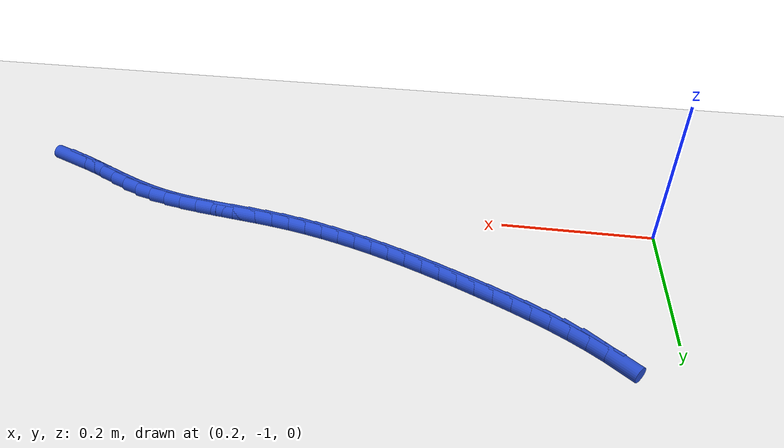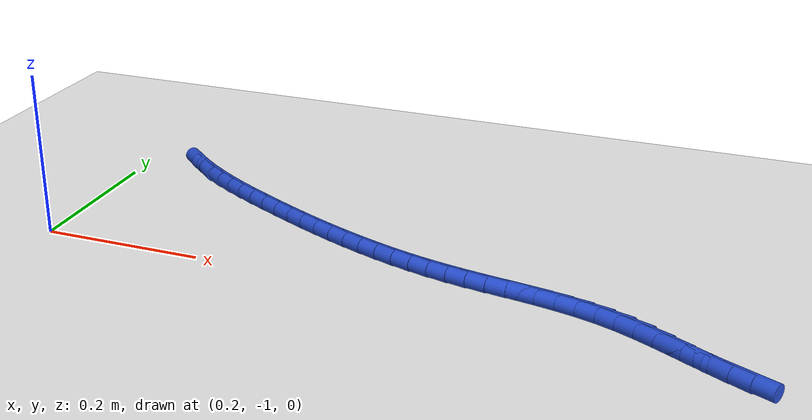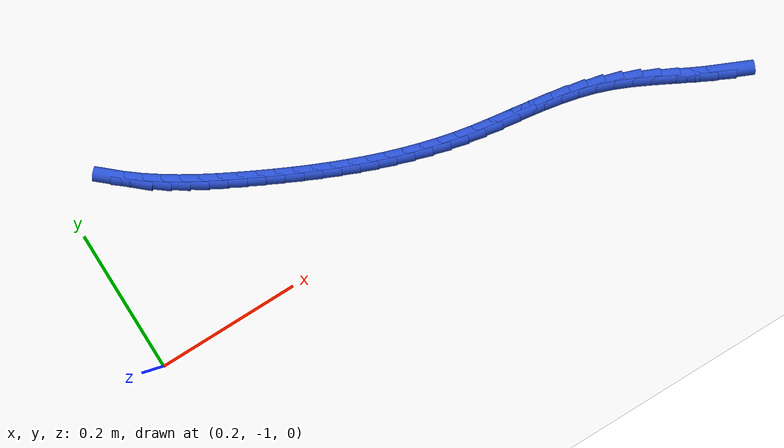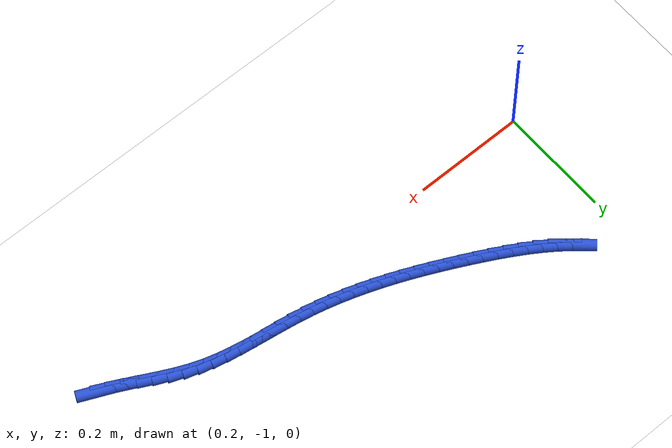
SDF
<sdf version="1.6">
 <world name="default">
  <model name="ground_plane">
   <static>1</static>
   <link name="link">
    <collision name="collision">
     <geometry><plane><normal>0 0 1</normal><size>100 100</size></plane></geometry>
     <surface><friction><ode><mu>100</mu><mu2>50</mu2></ode></friction></surface>
    </collision>
    <visual name="visual">
     <cast_shadows>0</cast_shadows>
     <geometry><plane><normal>0 0 1</normal><size>100 100</size></plane></geometry>
     <material>
      <script><uri>file://media/materials/scripts/gazebo.material</uri><name>Gazebo/WhiteGlow</name></script>
     </material>
    </visual>
   </link>
  </model>
  <model name="line">
   <link name="link_203">
    <pose>1.03021863751109 -1.058301303076226 0.01 0 1.57 -0.4224783265620867</pose>
    <collision name="collision">
     <geometry><cylinder><radius>0.01</radius><length>0.08</length></cylinder></geometry>
    </collision>
    <visual name="visual">
     <material>
      <script><name>Gazebo/Blue</name><uri>file://media/materials/scripts/gazebo.material</uri></script>
     </material>
     <geometry><cylinder><radius>0.01</radius><length>0.08</length></cylinder></geometry>
    </visual>
   </link>
   <link name="link_204">
    <pose>1.0080468159843095 -1.048333995788649 0.01 0 1.57 -0.464051053869303</pose>
    <collision name="collision">
     <geometry><cylinder><radius>0.01</radius><length>0.08</length></cylinder></geometry>
    </collision>
    <visual name="visual">
     <material>
      <script><name>Gazebo/Blue</name><uri>file://media/materials/scripts/gazebo.material</uri></script>
     </material>
     <geometry><cylinder><radius>0.01</radius><length>0.08</length></cylinder></geometry>
    </visual>
   </link>
   <link name="link_205">
    <pose>0.986089813592901 -1.0373444193082826 0.01 0 1.57 -0.4836240830130683</pose>
    <collision name="collision">
     <geometry><cylinder><radius>0.01</radius><length>0.08</length></cylinder></geometry>
    </collision>
    <visual name="visual">
     <material>
      <script><name>Gazebo/Blue</name><uri>file://media/materials/scripts/gazebo.material</uri></script>
     </material>
     <geometry><cylinder><radius>0.01</radius><length>0.08</length></cylinder></geometry>
    </visual>
   </link>
   <link name="link_206">
    <pose>0.9642119676707293 -1.025853607763503 0.01 0 1.57 -0.48185445131312665</pose>
    <collision name="collision">
     <geometry><cylinder><radius>0.01</radius><length>0.08</length></cylinder></geometry>
    </collision>
    <visual name="visual">
     <material>
      <script><name>Gazebo/Blue</name><uri>file://media/materials/scripts/gazebo.material</uri></script>
     </material>
     <geometry><cylinder><radius>0.01</radius><length>0.08</length></cylinder></geometry>
    </visual>
   </link>
   <link name="link_207">
    <pose>0.9422776155516576 -1.0143825952826864 0.01 0 1.57 -0.45882439761221333</pose>
    <collision name="collision">
     <geometry><cylinder><radius>0.01</radius><length>0.08</length></cylinder></geometry>
    </collision>
    <visual name="visual">
     <material>
      <script><name>Gazebo/Blue</name><uri>file://media/materials/scripts/gazebo.material</uri></script>
     </material>
     <geometry><cylinder><radius>0.01</radius><length>0.08</length></cylinder></geometry>
    </visual>
   </link>
   <link name="link_208">
    <pose>0.9201510945695499 -1.003452415994209 0.01 0 1.57 -0.4140738637235408</pose>
    <collision name="collision">
     <geometry><cylinder><radius>0.01</radius><length>0.08</length></cylinder></geometry>
    </collision>
    <visual name="visual">
     <material>
      <script><name>Gazebo/Blue</name><uri>file://media/materials/scripts/gazebo.material</uri></script>
     </material>
     <geometry><cylinder><radius>0.01</radius><length>0.08</length></cylinder></geometry>
    </visual>
   </link>
   <link name="link_209">
    <pose>0.8976967420582699 -0.9935841040264469 0.01 0 1.57 -0.34806401745366516</pose>
    <collision name="collision">
     <geometry><cylinder><radius>0.01</radius><length>0.08</length></cylinder></geometry>
    </collision>
    <visual name="visual">
     <material>
      <script><name>Gazebo/Blue</name><uri>file://media/materials/scripts/gazebo.material</uri></script>
     </material>
     <geometry><cylinder><radius>0.01</radius><length>0.08</length></cylinder></geometry>
    </visual>
   </link>
   <link name="link_210">
    <pose>0.8747863435547741 -0.9852713844449194 0.01 0 1.57 -0.2796554294478427</pose>
    <collision name="collision">
     <geometry><cylinder><radius>0.01</radius><length>0.08</length></cylinder></geometry>
    </collision>
    <visual name="visual">
     <material>
      <script><name>Gazebo/Blue</name><uri>file://media/materials/scripts/gazebo.material</uri></script>
     </material>
     <geometry><cylinder><radius>0.01</radius><length>0.08</length></cylinder></geometry>
    </visual>
   </link>
   <link name="link_211">
    <pose>0.8514140568436517 -0.9785593007524659 0.01 0 1.57 -0.225001195592373</pose>
    <collision name="collision">
     <geometry><cylinder><radius>0.01</radius><length>0.08</length></cylinder></geometry>
    </collision>
    <visual name="visual">
     <material>
      <script><name>Gazebo/Blue</name><uri>file://media/materials/scripts/gazebo.material</uri></script>
     </material>
     <geometry><cylinder><radius>0.01</radius><length>0.08</length></cylinder></geometry>
    </visual>
   </link>
   <link name="link_212">
    <pose>0.8276741623520744 -0.9731257937419424 0.01 0 1.57 -0.18477853818542572</pose>
    <collision name="collision">
     <geometry><cylinder><radius>0.01</radius><length>0.08</length></cylinder></geometry>
    </collision>
    <visual name="visual">
     <material>
      <script><name>Gazebo/Blue</name><uri>file://media/materials/scripts/gazebo.material</uri></script>
     </material>
     <geometry><cylinder><radius>0.01</radius><length>0.08</length></cylinder></geometry>
    </visual>
   </link>
   <link name="link_213">
    <pose>0.8036638825404794 -0.9686380171518764 0.01 0 1.57 -0.1588786830848773</pose>
    <collision name="collision">
     <geometry><cylinder><radius>0.01</radius><length>0.08</length></cylinder></geometry>
    </collision>
    <visual name="visual">
     <material>
      <script><name>Gazebo/Blue</name><uri>file://media/materials/scripts/gazebo.material</uri></script>
     </material>
     <geometry><cylinder><radius>0.01</radius><length>0.08</length></cylinder></geometry>
    </visual>
   </link>
   <link name="link_214">
    <pose>0.7794804398693054 -0.9647631247207947 0.01 0 1.57 -0.14711352230112223</pose>
    <collision name="collision">
     <geometry><cylinder><radius>0.01</radius><length>0.08</length></cylinder></geometry>
    </collision>
    <visual name="visual">
     <material>
      <script><name>Gazebo/Blue</name><uri>file://media/materials/scripts/gazebo.material</uri></script>
     </material>
     <geometry><cylinder><radius>0.01</radius><length>0.08</length></cylinder></geometry>
    </visual>
   </link>
   <link name="link_215">
    <pose>0.7552210567989899 -0.9611682701872242 0.01 0 1.57 -0.14937199822587385</pose>
    <collision name="collision">
     <geometry><cylinder><radius>0.01</radius><length>0.08</length></cylinder></geometry>
    </collision>
    <visual name="visual">
     <material>
      <script><name>Gazebo/Blue</name><uri>file://media/materials/scripts/gazebo.material</uri></script>
     </material>
     <geometry><cylinder><radius>0.01</radius><length>0.08</length></cylinder></geometry>
    </visual>
   </link>
   <link name="link_216">
    <pose>0.7309829557899701 -0.9575206072896923 0.01 0 1.57 -0.16568856419600284</pose>
    <collision name="collision">
     <geometry><cylinder><radius>0.01</radius><length>0.08</length></cylinder></geometry>
    </collision>
    <visual name="visual">
     <material>
      <script><name>Gazebo/Blue</name><uri>file://media/materials/scripts/gazebo.material</uri></script>
     </material>
     <geometry><cylinder><radius>0.01</radius><length>0.08</length></cylinder></geometry>
    </visual>
   </link>
   <link name="link_217">
    <pose>0.706863359302685 -0.9534872897667261 0.01 0 1.57 -0.19559381911928686</pose>
    <collision name="collision">
     <geometry><cylinder><radius>0.01</radius><length>0.08</length></cylinder></geometry>
    </collision>
    <visual name="visual">
     <material>
      <script><name>Gazebo/Blue</name><uri>file://media/materials/scripts/gazebo.material</uri></script>
     </material>
     <geometry><cylinder><radius>0.01</radius><length>0.08</length></cylinder></geometry>
    </visual>
   </link>
   <link name="link_218">
    <pose>0.6829549888881064 -0.9487503993467297 0.01 0 1.57 -0.23032864286600988</pose>
    <collision name="collision">
     <geometry><cylinder><radius>0.01</radius><length>0.08</length></cylinder></geometry>
    </collision>
    <visual name="visual">
     <material>
      <script><name>Gazebo/Blue</name><uri>file://media/materials/scripts/gazebo.material</uri></script>
     </material>
     <geometry><cylinder><radius>0.01</radius><length>0.08</length></cylinder></geometry>
    </visual>
   </link>
   <link name="link_219">
    <pose>0.659287662734426 -0.9432006468741135 0.01 0 1.57 -0.2632739483628606</pose>
    <collision name="collision">
     <geometry><cylinder><radius>0.01</radius><length>0.08</length></cylinder></geometry>
    </collision>
    <visual name="visual">
     <material>
      <script><name>Gazebo/Blue</name><uri>file://media/materials/scripts/gazebo.material</uri></script>
     </material>
     <geometry><cylinder><radius>0.01</radius><length>0.08</length></cylinder></geometry>
    </visual>
   </link>
   <link name="link_220">
    <pose>0.6358449524616667 -0.9368821273719351 0.01 0 1.57 -0.2941775048093035</pose>
    <collision name="collision">
     <geometry><cylinder><radius>0.01</radius><length>0.08</length></cylinder></geometry>
    </collision>
    <visual name="visual">
     <material>
      <script><name>Gazebo/Blue</name><uri>file://media/materials/scripts/gazebo.material</uri></script>
     </material>
     <geometry><cylinder><radius>0.01</radius><length>0.08</length></cylinder></geometry>
    </visual>
   </link>
   <link name="link_221">
    <pose>0.6126093592712212 -0.9298424860787506 0.01 0 1.57 -0.3229656138296829</pose>
    <collision name="collision">
     <geometry><cylinder><radius>0.01</radius><length>0.08</length></cylinder></geometry>
    </collision>
    <visual name="visual">
     <material>
      <script><name>Gazebo/Blue</name><uri>file://media/materials/scripts/gazebo.material</uri></script>
     </material>
     <geometry><cylinder><radius>0.01</radius><length>0.08</length></cylinder></geometry>
    </visual>
   </link>
   <link name="link_222">
    <pose>0.5895633843644783 -0.9221293682331155 0.01 0 1.57 -0.3495887053877267</pose>
    <collision name="collision">
     <geometry><cylinder><radius>0.01</radius><length>0.08</length></cylinder></geometry>
    </collision>
    <visual name="visual">
     <material>
      <script><name>Gazebo/Blue</name><uri>file://media/materials/scripts/gazebo.material</uri></script>
     </material>
     <geometry><cylinder><radius>0.01</radius><length>0.08</length></cylinder></geometry>
    </visual>
   </link>
   <link name="link_223">
    <pose>0.56668952894283 -0.9137904190735854 0.01 0 1.57 -0.37401791598054035</pose>
    <collision name="collision">
     <geometry><cylinder><radius>0.01</radius><length>0.08</length></cylinder></geometry>
    </collision>
    <visual name="visual">
     <material>
      <script><name>Gazebo/Blue</name><uri>file://media/materials/scripts/gazebo.material</uri></script>
     </material>
     <geometry><cylinder><radius>0.01</radius><length>0.08</length></cylinder></geometry>
    </visual>
   </link>
   <link name="link_224">
    <pose>0.5439702942076657 -0.9048732838387156 0.01 0 1.57 -0.39624150900037275</pose>
    <collision name="collision">
     <geometry><cylinder><radius>0.01</radius><length>0.08</length></cylinder></geometry>
    </collision>
    <visual name="visual">
     <material>
      <script><name>Gazebo/Blue</name><uri>file://media/materials/scripts/gazebo.material</uri></script>
     </material>
     <geometry><cylinder><radius>0.01</radius><length>0.08</length></cylinder></geometry>
    </visual>
   </link>
   <link name="link_225">
    <pose>0.5213881813603773 -0.8954256077670621 0.01 0 1.57 -0.41626135546765997</pose>
    <collision name="collision">
     <geometry><cylinder><radius>0.01</radius><length>0.08</length></cylinder></geometry>
    </collision>
    <visual name="visual">
     <material>
      <script><name>Gazebo/Blue</name><uri>file://media/materials/scripts/gazebo.material</uri></script>
     </material>
     <geometry><cylinder><radius>0.01</radius><length>0.08</length></cylinder></geometry>
    </visual>
   </link>
   <link name="link_226">
    <pose>0.4989256916023547 -0.8854950360971803 0.01 0 1.57 -0.4340896321595821</pose>
    <collision name="collision">
     <geometry><cylinder><radius>0.01</radius><length>0.08</length></cylinder></geometry>
    </collision>
    <visual name="visual">
     <material>
      <script><name>Gazebo/Blue</name><uri>file://media/materials/scripts/gazebo.material</uri></script>
     </material>
     <geometry><cylinder><radius>0.01</radius><length>0.08</length></cylinder></geometry>
    </visual>
   </link>
   <link name="link_227">
    <pose>0.4765653261349878 -0.8751292140676253 0.01 0 1.57 -0.44974583821378816</pose>
    <collision name="collision">
     <geometry><cylinder><radius>0.01</radius><length>0.08</length></cylinder></geometry>
    </collision>
    <visual name="visual">
     <material>
      <script><name>Gazebo/Blue</name><uri>file://media/materials/scripts/gazebo.material</uri></script>
     </material>
     <geometry><cylinder><radius>0.01</radius><length>0.08</length></cylinder></geometry>
    </visual>
   </link>
   <link name="link_228">
    <pose>0.45428958615966886 -0.8643757869169538 0.01 0 1.57 -0.46325418488110365</pose>
    <collision name="collision">
     <geometry><cylinder><radius>0.01</radius><length>0.08</length></cylinder></geometry>
    </collision>
    <visual name="visual">
     <material>
      <script><name>Gazebo/Blue</name><uri>file://media/materials/scripts/gazebo.material</uri></script>
     </material>
     <geometry><cylinder><radius>0.01</radius><length>0.08</length></cylinder></geometry>
    </visual>
   </link>
   <link name="link_229">
    <pose>0.4320809728777868 -0.8532823998837205 0.01 0 1.57 -0.4751211648930782</pose>
    <collision name="collision">
     <geometry><cylinder><radius>0.01</radius><length>0.08</length></cylinder></geometry>
    </collision>
    <visual name="visual">
     <material>
      <script><name>Gazebo/Blue</name><uri>file://media/materials/scripts/gazebo.material</uri></script>
     </material>
     <geometry><cylinder><radius>0.01</radius><length>0.08</length></cylinder></geometry>
    </visual>
   </link>
   <link name="link_230">
    <pose>0.4099315726916804 -0.8418881873217176 0.01 0 1.57 -0.49016340378929146</pose>
    <collision name="collision">
     <geometry><cylinder><radius>0.01</radius><length>0.08</length></cylinder></geometry>
    </collision>
    <visual name="visual">
     <material>
      <script><name>Gazebo/Blue</name><uri>file://media/materials/scripts/gazebo.material</uri></script>
     </material>
     <geometry><cylinder><radius>0.01</radius><length>0.08</length></cylinder></geometry>
    </visual>
   </link>
   <link name="link_231">
    <pose>0.3879288629372357 -0.8301475841352917 0.01 0 1.57 -0.5112371960113997</pose>
    <collision name="collision">
     <geometry><cylinder><radius>0.01</radius><length>0.08</length></cylinder></geometry>
    </collision>
    <visual name="visual">
     <material>
      <script><name>Gazebo/Blue</name><uri>file://media/materials/scripts/gazebo.material</uri></script>
     </material>
     <geometry><cylinder><radius>0.01</radius><length>0.08</length></cylinder></geometry>
    </visual>
   </link>
   <link name="link_232">
    <pose>0.36621501594623723 -0.8179664604871832 0.01 0 1.57 -0.5385881167347344</pose>
    <collision name="collision">
     <geometry><cylinder><radius>0.01</radius><length>0.08</length></cylinder></geometry>
    </collision>
    <visual name="visual">
     <material>
      <script><name>Gazebo/Blue</name><uri>file://media/materials/scripts/gazebo.material</uri></script>
     </material>
     <geometry><cylinder><radius>0.01</radius><length>0.08</length></cylinder></geometry>
    </visual>
   </link>
   <link name="link_233">
    <pose>0.34493285208226326 -0.8052501111402011 0.01 0 1.57 -0.5725056569542945</pose>
    <collision name="collision">
     <geometry><cylinder><radius>0.01</radius><length>0.08</length></cylinder></geometry>
    </collision>
    <visual name="visual">
     <material>
      <script><name>Gazebo/Blue</name><uri>file://media/materials/scripts/gazebo.material</uri></script>
     </material>
     <geometry><cylinder><radius>0.01</radius><length>0.08</length></cylinder></geometry>
    </visual>
   </link>
   <link name="link_234">
    <pose>0.32422519170889513 -0.7919038308571557 0.01 0 1.57 -0.6133292075046151</pose>
    <collision name="collision">
     <geometry><cylinder><radius>0.01</radius><length>0.08</length></cylinder></geometry>
    </collision>
    <visual name="visual">
     <material>
      <script><name>Gazebo/Blue</name><uri>file://media/materials/scripts/gazebo.material</uri></script>
     </material>
     <geometry><cylinder><radius>0.01</radius><length>0.08</length></cylinder></geometry>
    </visual>
   </link>
   <link name="link_235">
    <pose>0.3042348551897117 -0.7778329144008564 0.01 0 1.57 -0.6614084850394946</pose>
    <collision name="collision">
     <geometry><cylinder><radius>0.01</radius><length>0.08</length></cylinder></geometry>
    </collision>
    <visual name="visual">
     <material>
      <script><name>Gazebo/Blue</name><uri>file://media/materials/scripts/gazebo.material</uri></script>
     </material>
     <geometry><cylinder><radius>0.01</radius><length>0.08</length></cylinder></geometry>
    </visual>
   </link>
   <link name="link_236">
    <pose>0.2851046628882924 -0.762942656534113 0.01 0 1.57 -0.7170456808527896</pose>
    <collision name="collision">
     <geometry><cylinder><radius>0.01</radius><length>0.08</length></cylinder></geometry>
    </collision>
    <visual name="visual">
     <material>
      <script><name>Gazebo/Blue</name><uri>file://media/materials/scripts/gazebo.material</uri></script>
     </material>
     <geometry><cylinder><radius>0.01</radius><length>0.08</length></cylinder></geometry>
    </visual>
   </link>
  </model>
 </world>
</sdf>
